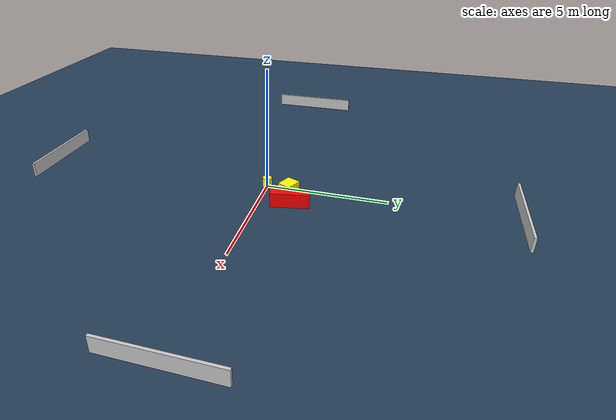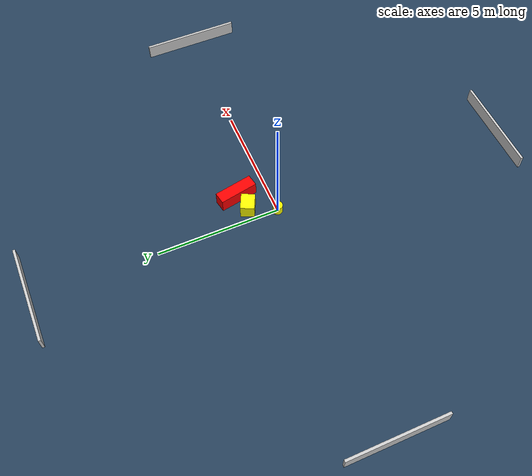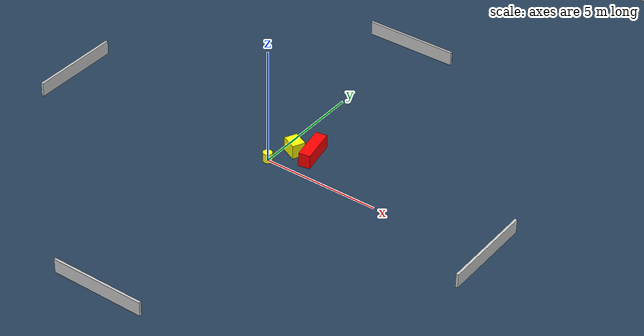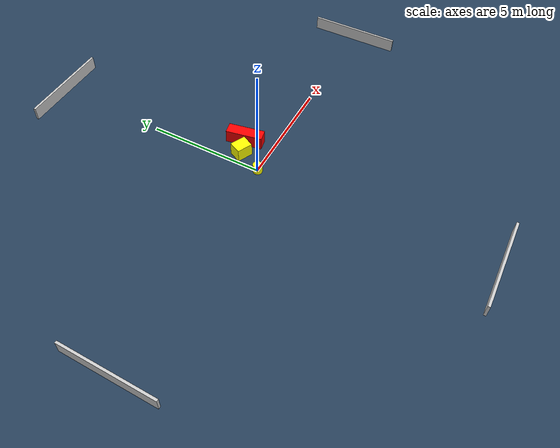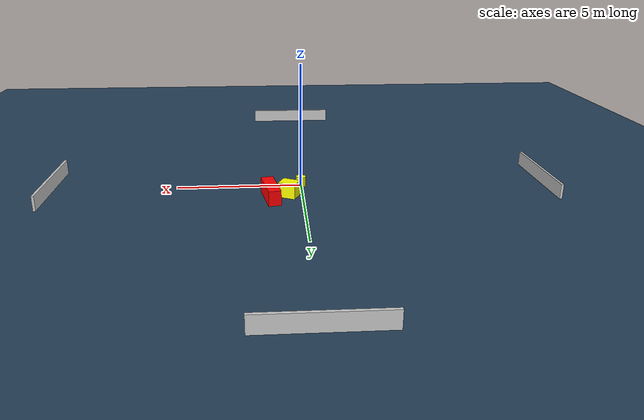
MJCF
<?xml version="1.0" ?>
<mujoco model="generated_environment">
  <option timestep="0.01" integrator="RK4" cone="elliptic"/>
  <default>
    <geom density="1"/>
  </default>
  <asset>
    <texture builtin="gradient" height="3072" name="skybox" rgb1="0.3 0.5 0.7" rgb2="0 0 0" type="skybox" width="512"/>
    <texture builtin="checker" height="300" name="groundplane" rgb1="0.2 0.3 0.4" rgb2="0.1 0.2 0.3" type="2d" width="300"/>
    <material name="groundplane" reflectance="0.2" texrepeat="5 5" texture="groundplane"/>
  </asset>
  <worldbody>
    <light dir="0 0 -1" directional="true" pos="0 0 1.5"/>
    <geom condim="3" friction="0.5 0.005 0.001" material="groundplane" name="floor" pos="0 0 0" size="0 0 0.05" type="plane"/>
    <body name="walls">
      <geom name="wall_1" condim="4" pos="-10.0 0.0 0.3" rgba="0.800000011920929 0.800000011920929 0.800000011920929 1.0" size="0.05 2.0 0.3" type="box"/>
      <geom name="wall_2" condim="4" pos="10.0 0.0 0.3" rgba="0.800000011920929 0.800000011920929 0.800000011920929 1.0" size="0.05 2.0 0.3" type="box"/>
      <geom name="wall_3" condim="4" pos="0.0 -10.0 0.3" rgba="0.800000011920929 0.800000011920929 0.800000011920929 1.0" size="2.0 0.05 0.3" type="box"/>
      <geom name="wall_4" condim="4" pos="0.0 10.0 0.3" rgba="0.800000011920929 0.800000011920929 0.800000011920929 1.0" size="2.0 0.05 0.3" type="box"/>
    </body>
    <body name="robot">
      <joint name="joint_x" type="slide" pos="0 0 0" axis="1 0 0"/>
      <joint name="joint_y" type="slide" pos="0 0 0" axis="0 1 0"/>
      <geom name="robot" type="cylinder" pos="0.0 0.0 0.2" size="0.2 0.2 0.0" mass="5.0" friction="1.0 0.005 0.0001" condim="4" rgba="1.0 1.0 0.0 1.0"/>
    </body>
    <body name="obstacle_1_movable">
      <geom name="obstacle_1_movable" condim="4" pos="0.5206305020476517 1.0610982169516154 0.3" euler="0 0 334.5579512420848" friction="0.0 0.005 0.001" rgba="1.0 1.0 0.0 1.0" size="0.3427063561117206 0.27962930111082024 0.3" type="box" mass="0.1"/>
      <joint type="free"/>
    </body>
    <body name="obstacle_2_static">
      <geom name="obstacle_2_static" condim="4" pos="1.2404732322882694 1.271428881403333 0.3" euler="0 0 100.80872846225058" friction="0.0 0.005 0.001" rgba="1.0 0.0 0.0 1.0" size="0.784389753150047 0.24536901664751493 0.3" type="box"/>
    </body>
  </worldbody>
  <actuator>
    <motor name="actuator_x" joint="joint_x" gear="1" ctrlrange="-1 1"/>
    <motor name="actuator_y" joint="joint_y" gear="1" ctrlrange="-1 1"/>
  </actuator>
</mujoco>
